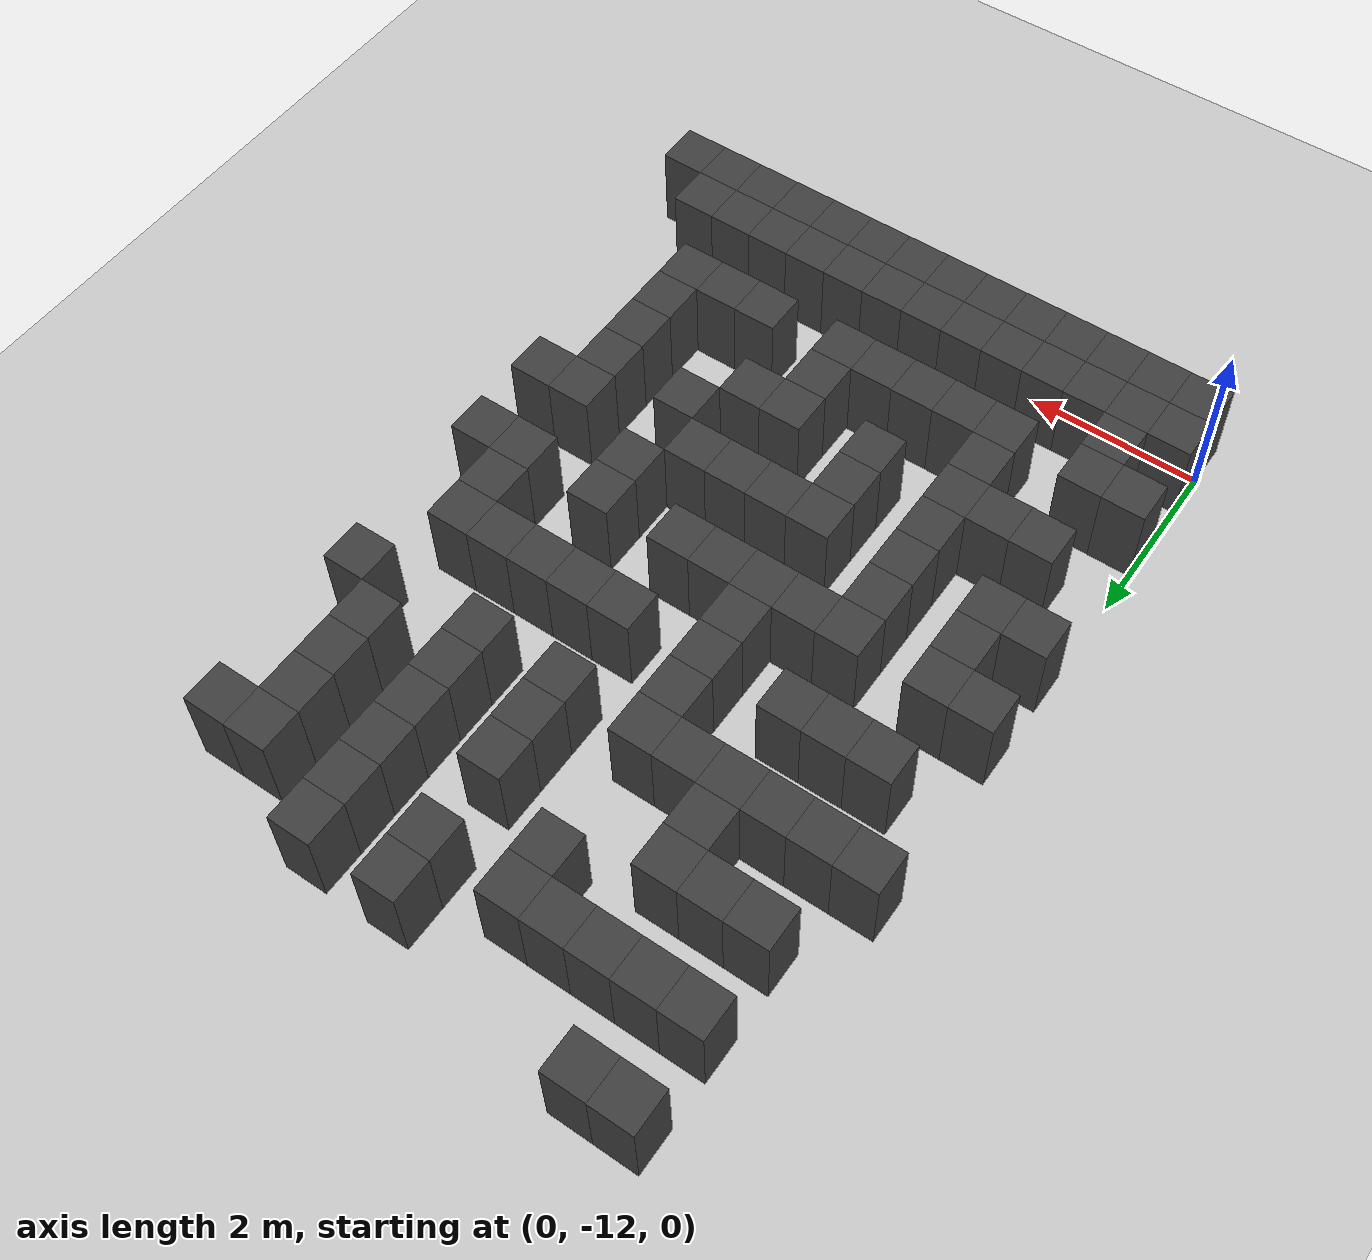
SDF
<sdf version="1.7">
 <world name="map_15293">
  <model name="ground_plane">
   <static>true</static>
   <link name="link">
    <collision name="collision">
     <geometry><plane><normal>0 0 1</normal><size>200 200</size></plane></geometry>
    </collision>
    <visual name="visual">
     <geometry><plane><normal>0 0 1</normal><size>200 200</size></plane></geometry>
     <material><ambient>0.8 0.8 0.8 1</ambient><diffuse>0.8 0.8 0.8 1</diffuse></material>
    </visual>
   </link>
  </model>
  <model name="maze_environment">
   <static>true</static>
   <link name="wall_719">
    <pose>0.750 -2.750 0.500 0 0 0</pose>
    <collision name="col"><geometry><box><size>0.5 0.5 1.0</size></box></geometry></collision>
    <visual name="vis">
     <geometry><box><size>0.5 0.5 1.0</size></box></geometry>
     <material><ambient>0.15 0.15 0.15 1</ambient><diffuse>0.25 0.25 0.25 1</diffuse></material>
    </visual>
   </link>
   <link name="wall_720">
    <pose>1.250 -2.750 0.500 0 0 0</pose>
    <collision name="col"><geometry><box><size>0.5 0.5 1.0</size></box></geometry></collision>
    <visual name="vis">
     <geometry><box><size>0.5 0.5 1.0</size></box></geometry>
     <material><ambient>0.15 0.15 0.15 1</ambient><diffuse>0.25 0.25 0.25 1</diffuse></material>
    </visual>
   </link>
   <link name="wall_744">
    <pose>3.750 -3.250 0.500 0 0 0</pose>
    <collision name="col"><geometry><box><size>0.5 0.5 1.0</size></box></geometry></collision>
    <visual name="vis">
     <geometry><box><size>0.5 0.5 1.0</size></box></geometry>
     <material><ambient>0.15 0.15 0.15 1</ambient><diffuse>0.25 0.25 0.25 1</diffuse></material>
    </visual>
   </link>
   <link name="wall_745">
    <pose>4.750 -3.250 0.500 0 0 0</pose>
    <collision name="col"><geometry><box><size>0.5 0.5 1.0</size></box></geometry></collision>
    <visual name="vis">
     <geometry><box><size>0.5 0.5 1.0</size></box></geometry>
     <material><ambient>0.15 0.15 0.15 1</ambient><diffuse>0.25 0.25 0.25 1</diffuse></material>
    </visual>
   </link>
   <link name="wall_767">
    <pose>0.750 -3.750 0.500 0 0 0</pose>
    <collision name="col"><geometry><box><size>0.5 0.5 1.0</size></box></geometry></collision>
    <visual name="vis">
     <geometry><box><size>0.5 0.5 1.0</size></box></geometry>
     <material><ambient>0.15 0.15 0.15 1</ambient><diffuse>0.25 0.25 0.25 1</diffuse></material>
    </visual>
   </link>
   <link name="wall_768">
    <pose>1.250 -3.750 0.500 0 0 0</pose>
    <collision name="col"><geometry><box><size>0.5 0.5 1.0</size></box></geometry></collision>
    <visual name="vis">
     <geometry><box><size>0.5 0.5 1.0</size></box></geometry>
     <material><ambient>0.15 0.15 0.15 1</ambient><diffuse>0.25 0.25 0.25 1</diffuse></material>
    </visual>
   </link>
   <link name="wall_769">
    <pose>1.750 -3.750 0.500 0 0 0</pose>
    <collision name="col"><geometry><box><size>0.5 0.5 1.0</size></box></geometry></collision>
    <visual name="vis">
     <geometry><box><size>0.5 0.5 1.0</size></box></geometry>
     <material><ambient>0.15 0.15 0.15 1</ambient><diffuse>0.25 0.25 0.25 1</diffuse></material>
    </visual>
   </link>
   <link name="wall_770">
    <pose>2.250 -3.750 0.500 0 0 0</pose>
    <collision name="col"><geometry><box><size>0.5 0.5 1.0</size></box></geometry></collision>
    <visual name="vis">
     <geometry><box><size>0.5 0.5 1.0</size></box></geometry>
     <material><ambient>0.15 0.15 0.15 1</ambient><diffuse>0.25 0.25 0.25 1</diffuse></material>
    </visual>
   </link>
   <link name="wall_771">
    <pose>2.750 -3.750 0.500 0 0 0</pose>
    <collision name="col"><geometry><box><size>0.5 0.5 1.0</size></box></geometry></collision>
    <visual name="vis">
     <geometry><box><size>0.5 0.5 1.0</size></box></geometry>
     <material><ambient>0.15 0.15 0.15 1</ambient><diffuse>0.25 0.25 0.25 1</diffuse></material>
    </visual>
   </link>
   <link name="wall_772">
    <pose>3.750 -3.750 0.500 0 0 0</pose>
    <collision name="col"><geometry><box><size>0.5 0.5 1.0</size></box></geometry></collision>
    <visual name="vis">
     <geometry><box><size>0.5 0.5 1.0</size></box></geometry>
     <material><ambient>0.15 0.15 0.15 1</ambient><diffuse>0.25 0.25 0.25 1</diffuse></material>
    </visual>
   </link>
   <link name="wall_773">
    <pose>4.750 -3.750 0.500 0 0 0</pose>
    <collision name="col"><geometry><box><size>0.5 0.5 1.0</size></box></geometry></collision>
    <visual name="vis">
     <geometry><box><size>0.5 0.5 1.0</size></box></geometry>
     <material><ambient>0.15 0.15 0.15 1</ambient><diffuse>0.25 0.25 0.25 1</diffuse></material>
    </visual>
   </link>
   <link name="wall_774">
    <pose>5.750 -3.750 0.500 0 0 0</pose>
    <collision name="col"><geometry><box><size>0.5 0.5 1.0</size></box></geometry></collision>
    <visual name="vis">
     <geometry><box><size>0.5 0.5 1.0</size></box></geometry>
     <material><ambient>0.15 0.15 0.15 1</ambient><diffuse>0.25 0.25 0.25 1</diffuse></material>
    </visual>
   </link>
   <link name="wall_775">
    <pose>6.250 -3.750 0.500 0 0 0</pose>
    <collision name="col"><geometry><box><size>0.5 0.5 1.0</size></box></geometry></collision>
    <visual name="vis">
     <geometry><box><size>0.5 0.5 1.0</size></box></geometry>
     <material><ambient>0.15 0.15 0.15 1</ambient><diffuse>0.25 0.25 0.25 1</diffuse></material>
    </visual>
   </link>
   <link name="wall_785">
    <pose>2.750 -4.250 0.500 0 0 0</pose>
    <collision name="col"><geometry><box><size>0.5 0.5 1.0</size></box></geometry></collision>
    <visual name="vis">
     <geometry><box><size>0.5 0.5 1.0</size></box></geometry>
     <material><ambient>0.15 0.15 0.15 1</ambient><diffuse>0.25 0.25 0.25 1</diffuse></material>
    </visual>
   </link>
   <link name="wall_786">
    <pose>4.750 -4.250 0.500 0 0 0</pose>
    <collision name="col"><geometry><box><size>0.5 0.5 1.0</size></box></geometry></collision>
    <visual name="vis">
     <geometry><box><size>0.5 0.5 1.0</size></box></geometry>
     <material><ambient>0.15 0.15 0.15 1</ambient><diffuse>0.25 0.25 0.25 1</diffuse></material>
    </visual>
   </link>
   <link name="wall_787">
    <pose>5.750 -4.250 0.500 0 0 0</pose>
    <collision name="col"><geometry><box><size>0.5 0.5 1.0</size></box></geometry></collision>
    <visual name="vis">
     <geometry><box><size>0.5 0.5 1.0</size></box></geometry>
     <material><ambient>0.15 0.15 0.15 1</ambient><diffuse>0.25 0.25 0.25 1</diffuse></material>
    </visual>
   </link>
   <link name="wall_806">
    <pose>0.750 -4.750 0.500 0 0 0</pose>
    <collision name="col"><geometry><box><size>0.5 0.5 1.0</size></box></geometry></collision>
    <visual name="vis">
     <geometry><box><size>0.5 0.5 1.0</size></box></geometry>
     <material><ambient>0.15 0.15 0.15 1</ambient><diffuse>0.25 0.25 0.25 1</diffuse></material>
    </visual>
   </link>
   <link name="wall_807">
    <pose>1.250 -4.750 0.500 0 0 0</pose>
    <collision name="col"><geometry><box><size>0.5 0.5 1.0</size></box></geometry></collision>
    <visual name="vis">
     <geometry><box><size>0.5 0.5 1.0</size></box></geometry>
     <material><ambient>0.15 0.15 0.15 1</ambient><diffuse>0.25 0.25 0.25 1</diffuse></material>
    </visual>
   </link>
   <link name="wall_808">
    <pose>1.750 -4.750 0.500 0 0 0</pose>
    <collision name="col"><geometry><box><size>0.5 0.5 1.0</size></box></geometry></collision>
    <visual name="vis">
     <geometry><box><size>0.5 0.5 1.0</size></box></geometry>
     <material><ambient>0.15 0.15 0.15 1</ambient><diffuse>0.25 0.25 0.25 1</diffuse></material>
    </visual>
   </link>
   <link name="wall_809">
    <pose>3.750 -4.750 0.500 0 0 0</pose>
    <collision name="col"><geometry><box><size>0.5 0.5 1.0</size></box></geometry></collision>
    <visual name="vis">
     <geometry><box><size>0.5 0.5 1.0</size></box></geometry>
     <material><ambient>0.15 0.15 0.15 1</ambient><diffuse>0.25 0.25 0.25 1</diffuse></material>
    </visual>
   </link>
   <link name="wall_810">
    <pose>4.750 -4.750 0.500 0 0 0</pose>
    <collision name="col"><geometry><box><size>0.5 0.5 1.0</size></box></geometry></collision>
    <visual name="vis">
     <geometry><box><size>0.5 0.5 1.0</size></box></geometry>
     <material><ambient>0.15 0.15 0.15 1</ambient><diffuse>0.25 0.25 0.25 1</diffuse></material>
    </visual>
   </link>
   <link name="wall_811">
    <pose>5.750 -4.750 0.500 0 0 0</pose>
    <collision name="col"><geometry><box><size>0.5 0.5 1.0</size></box></geometry></collision>
    <visual name="vis">
     <geometry><box><size>0.5 0.5 1.0</size></box></geometry>
     <material><ambient>0.15 0.15 0.15 1</ambient><diffuse>0.25 0.25 0.25 1</diffuse></material>
    </visual>
   </link>
   <link name="wall_825">
    <pose>1.750 -5.250 0.500 0 0 0</pose>
    <collision name="col"><geometry><box><size>0.5 0.5 1.0</size></box></geometry></collision>
    <visual name="vis">
     <geometry><box><size>0.5 0.5 1.0</size></box></geometry>
     <material><ambient>0.15 0.15 0.15 1</ambient><diffuse>0.25 0.25 0.25 1</diffuse></material>
    </visual>
   </link>
   <link name="wall_826">
    <pose>3.750 -5.250 0.500 0 0 0</pose>
    <collision name="col"><geometry><box><size>0.5 0.5 1.0</size></box></geometry></collision>
    <visual name="vis">
     <geometry><box><size>0.5 0.5 1.0</size></box></geometry>
     <material><ambient>0.15 0.15 0.15 1</ambient><diffuse>0.25 0.25 0.25 1</diffuse></material>
    </visual>
   </link>
   <link name="wall_827">
    <pose>4.750 -5.250 0.500 0 0 0</pose>
    <collision name="col"><geometry><box><size>0.5 0.5 1.0</size></box></geometry></collision>
    <visual name="vis">
     <geometry><box><size>0.5 0.5 1.0</size></box></geometry>
     <material><ambient>0.15 0.15 0.15 1</ambient><diffuse>0.25 0.25 0.25 1</diffuse></material>
    </visual>
   </link>
   <link name="wall_828">
    <pose>5.750 -5.250 0.500 0 0 0</pose>
    <collision name="col"><geometry><box><size>0.5 0.5 1.0</size></box></geometry></collision>
    <visual name="vis">
     <geometry><box><size>0.5 0.5 1.0</size></box></geometry>
     <material><ambient>0.15 0.15 0.15 1</ambient><diffuse>0.25 0.25 0.25 1</diffuse></material>
    </visual>
   </link>
   <link name="wall_853">
    <pose>0.250 -5.750 0.500 0 0 0</pose>
    <collision name="col"><geometry><box><size>0.5 0.5 1.0</size></box></geometry></collision>
    <visual name="vis">
     <geometry><box><size>0.5 0.5 1.0</size></box></geometry>
     <material><ambient>0.15 0.15 0.15 1</ambient><diffuse>0.25 0.25 0.25 1</diffuse></material>
    </visual>
   </link>
   <link name="wall_854">
    <pose>0.750 -5.750 0.500 0 0 0</pose>
    <collision name="col"><geometry><box><size>0.5 0.5 1.0</size></box></geometry></collision>
    <visual name="vis">
     <geometry><box><size>0.5 0.5 1.0</size></box></geometry>
     <material><ambient>0.15 0.15 0.15 1</ambient><diffuse>0.25 0.25 0.25 1</diffuse></material>
    </visual>
   </link>
   <link name="wall_855">
    <pose>1.250 -5.750 0.500 0 0 0</pose>
    <collision name="col"><geometry><box><size>0.5 0.5 1.0</size></box></geometry></collision>
    <visual name="vis">
     <geometry><box><size>0.5 0.5 1.0</size></box></geometry>
     <material><ambient>0.15 0.15 0.15 1</ambient><diffuse>0.25 0.25 0.25 1</diffuse></material>
    </visual>
   </link>
   <link name="wall_856">
    <pose>1.750 -5.750 0.500 0 0 0</pose>
    <collision name="col"><geometry><box><size>0.5 0.5 1.0</size></box></geometry></collision>
    <visual name="vis">
     <geometry><box><size>0.5 0.5 1.0</size></box></geometry>
     <material><ambient>0.15 0.15 0.15 1</ambient><diffuse>0.25 0.25 0.25 1</diffuse></material>
    </visual>
   </link>
   <link name="wall_857">
    <pose>2.250 -5.750 0.500 0 0 0</pose>
    <collision name="col"><geometry><box><size>0.5 0.5 1.0</size></box></geometry></collision>
    <visual name="vis">
     <geometry><box><size>0.5 0.5 1.0</size></box></geometry>
     <material><ambient>0.15 0.15 0.15 1</ambient><diffuse>0.25 0.25 0.25 1</diffuse></material>
    </visual>
   </link>
   <link name="wall_858">
    <pose>2.750 -5.750 0.500 0 0 0</pose>
    <collision name="col"><geometry><box><size>0.5 0.5 1.0</size></box></geometry></collision>
    <visual name="vis">
     <geometry><box><size>0.5 0.5 1.0</size></box></geometry>
     <material><ambient>0.15 0.15 0.15 1</ambient><diffuse>0.25 0.25 0.25 1</diffuse></material>
    </visual>
   </link>
   <link name="wall_859">
    <pose>3.750 -5.750 0.500 0 0 0</pose>
    <collision name="col"><geometry><box><size>0.5 0.5 1.0</size></box></geometry></collision>
    <visual name="vis">
     <geometry><box><size>0.5 0.5 1.0</size></box></geometry>
     <material><ambient>0.15 0.15 0.15 1</ambient><diffuse>0.25 0.25 0.25 1</diffuse></material>
    </visual>
   </link>
   <link name="wall_860">
    <pose>4.750 -5.750 0.500 0 0 0</pose>
    <collision name="col"><geometry><box><size>0.5 0.5 1.0</size></box></geometry></collision>
    <visual name="vis">
     <geometry><box><size>0.5 0.5 1.0</size></box></geometry>
     <material><ambient>0.15 0.15 0.15 1</ambient><diffuse>0.25 0.25 0.25 1</diffuse></material>
    </visual>
   </link>
   <link name="wall_861">
    <pose>6.250 -5.750 0.500 0 0 0</pose>
    <collision name="col"><geometry><box><size>0.5 0.5 1.0</size></box></geometry></collision>
    <visual name="vis">
     <geometry><box><size>0.5 0.5 1.0</size></box></geometry>
     <material><ambient>0.15 0.15 0.15 1</ambient><diffuse>0.25 0.25 0.25 1</diffuse></material>
    </visual>
   </link>
   <link name="wall_873">
    <pose>2.750 -6.250 0.500 0 0 0</pose>
    <collision name="col"><geometry><box><size>0.5 0.5 1.0</size></box></geometry></collision>
    <visual name="vis">
     <geometry><box><size>0.5 0.5 1.0</size></box></geometry>
     <material><ambient>0.15 0.15 0.15 1</ambient><diffuse>0.25 0.25 0.25 1</diffuse></material>
    </visual>
   </link>
   <link name="wall_897">
    <pose>0.750 -6.750 0.500 0 0 0</pose>
    <collision name="col"><geometry><box><size>0.5 0.5 1.0</size></box></geometry></collision>
    <visual name="vis">
     <geometry><box><size>0.5 0.5 1.0</size></box></geometry>
     <material><ambient>0.15 0.15 0.15 1</ambient><diffuse>0.25 0.25 0.25 1</diffuse></material>
    </visual>
   </link>
   <link name="wall_898">
    <pose>1.250 -6.750 0.500 0 0 0</pose>
    <collision name="col"><geometry><box><size>0.5 0.5 1.0</size></box></geometry></collision>
    <visual name="vis">
     <geometry><box><size>0.5 0.5 1.0</size></box></geometry>
     <material><ambient>0.15 0.15 0.15 1</ambient><diffuse>0.25 0.25 0.25 1</diffuse></material>
    </visual>
   </link>
   <link name="wall_899">
    <pose>1.750 -6.750 0.500 0 0 0</pose>
    <collision name="col"><geometry><box><size>0.5 0.5 1.0</size></box></geometry></collision>
    <visual name="vis">
     <geometry><box><size>0.5 0.5 1.0</size></box></geometry>
     <material><ambient>0.15 0.15 0.15 1</ambient><diffuse>0.25 0.25 0.25 1</diffuse></material>
    </visual>
   </link>
   <link name="wall_900">
    <pose>2.750 -6.750 0.500 0 0 0</pose>
    <collision name="col"><geometry><box><size>0.5 0.5 1.0</size></box></geometry></collision>
    <visual name="vis">
     <geometry><box><size>0.5 0.5 1.0</size></box></geometry>
     <material><ambient>0.15 0.15 0.15 1</ambient><diffuse>0.25 0.25 0.25 1</diffuse></material>
    </visual>
   </link>
   <link name="wall_901">
    <pose>3.750 -6.750 0.500 0 0 0</pose>
    <collision name="col"><geometry><box><size>0.5 0.5 1.0</size></box></geometry></collision>
    <visual name="vis">
     <geometry><box><size>0.5 0.5 1.0</size></box></geometry>
     <material><ambient>0.15 0.15 0.15 1</ambient><diffuse>0.25 0.25 0.25 1</diffuse></material>
    </visual>
   </link>
   <link name="wall_902">
    <pose>4.250 -6.750 0.500 0 0 0</pose>
    <collision name="col"><geometry><box><size>0.5 0.5 1.0</size></box></geometry></collision>
    <visual name="vis">
     <geometry><box><size>0.5 0.5 1.0</size></box></geometry>
     <material><ambient>0.15 0.15 0.15 1</ambient><diffuse>0.25 0.25 0.25 1</diffuse></material>
    </visual>
   </link>
   <link name="wall_903">
    <pose>4.750 -6.750 0.500 0 0 0</pose>
    <collision name="col"><geometry><box><size>0.5 0.5 1.0</size></box></geometry></collision>
    <visual name="vis">
     <geometry><box><size>0.5 0.5 1.0</size></box></geometry>
     <material><ambient>0.15 0.15 0.15 1</ambient><diffuse>0.25 0.25 0.25 1</diffuse></material>
    </visual>
   </link>
   <link name="wall_904">
    <pose>5.250 -6.750 0.500 0 0 0</pose>
    <collision name="col"><geometry><box><size>0.5 0.5 1.0</size></box></geometry></collision>
    <visual name="vis">
     <geometry><box><size>0.5 0.5 1.0</size></box></geometry>
     <material><ambient>0.15 0.15 0.15 1</ambient><diffuse>0.25 0.25 0.25 1</diffuse></material>
    </visual>
   </link>
   <link name="wall_905">
    <pose>5.750 -6.750 0.500 0 0 0</pose>
    <collision name="col"><geometry><box><size>0.5 0.5 1.0</size></box></geometry></collision>
    <visual name="vis">
     <geometry><box><size>0.5 0.5 1.0</size></box></geometry>
     <material><ambient>0.15 0.15 0.15 1</ambient><diffuse>0.25 0.25 0.25 1</diffuse></material>
    </visual>
   </link>
   <link name="wall_922">
    <pose>2.750 -7.250 0.500 0 0 0</pose>
    <collision name="col"><geometry><box><size>0.5 0.5 1.0</size></box></geometry></collision>
    <visual name="vis">
     <geometry><box><size>0.5 0.5 1.0</size></box></geometry>
     <material><ambient>0.15 0.15 0.15 1</ambient><diffuse>0.25 0.25 0.25 1</diffuse></material>
    </visual>
   </link>
   <link name="wall_923">
    <pose>5.750 -7.250 0.500 0 0 0</pose>
    <collision name="col"><geometry><box><size>0.5 0.5 1.0</size></box></geometry></collision>
    <visual name="vis">
     <geometry><box><size>0.5 0.5 1.0</size></box></geometry>
     <material><ambient>0.15 0.15 0.15 1</ambient><diffuse>0.25 0.25 0.25 1</diffuse></material>
    </visual>
   </link>
   <link name="wall_943">
    <pose>0.250 -7.750 0.500 0 0 0</pose>
    <collision name="col"><geometry><box><size>0.5 0.5 1.0</size></box></geometry></collision>
    <visual name="vis">
     <geometry><box><size>0.5 0.5 1.0</size></box></geometry>
     <material><ambient>0.15 0.15 0.15 1</ambient><diffuse>0.25 0.25 0.25 1</diffuse></material>
    </visual>
   </link>
   <link name="wall_944">
    <pose>0.750 -7.750 0.500 0 0 0</pose>
    <collision name="col"><geometry><box><size>0.5 0.5 1.0</size></box></geometry></collision>
    <visual name="vis">
     <geometry><box><size>0.5 0.5 1.0</size></box></geometry>
     <material><ambient>0.15 0.15 0.15 1</ambient><diffuse>0.25 0.25 0.25 1</diffuse></material>
    </visual>
   </link>
   <link name="wall_945">
    <pose>1.750 -7.750 0.500 0 0 0</pose>
    <collision name="col"><geometry><box><size>0.5 0.5 1.0</size></box></geometry></collision>
    <visual name="vis">
     <geometry><box><size>0.5 0.5 1.0</size></box></geometry>
     <material><ambient>0.15 0.15 0.15 1</ambient><diffuse>0.25 0.25 0.25 1</diffuse></material>
    </visual>
   </link>
   <link name="wall_946">
    <pose>2.250 -7.750 0.500 0 0 0</pose>
    <collision name="col"><geometry><box><size>0.5 0.5 1.0</size></box></geometry></collision>
    <visual name="vis">
     <geometry><box><size>0.5 0.5 1.0</size></box></geometry>
     <material><ambient>0.15 0.15 0.15 1</ambient><diffuse>0.25 0.25 0.25 1</diffuse></material>
    </visual>
   </link>
   <link name="wall_947">
    <pose>2.750 -7.750 0.500 0 0 0</pose>
    <collision name="col"><geometry><box><size>0.5 0.5 1.0</size></box></geometry></collision>
    <visual name="vis">
     <geometry><box><size>0.5 0.5 1.0</size></box></geometry>
     <material><ambient>0.15 0.15 0.15 1</ambient><diffuse>0.25 0.25 0.25 1</diffuse></material>
    </visual>
   </link>
   <link name="wall_948">
    <pose>3.250 -7.750 0.500 0 0 0</pose>
    <collision name="col"><geometry><box><size>0.5 0.5 1.0</size></box></geometry></collision>
    <visual name="vis">
     <geometry><box><size>0.5 0.5 1.0</size></box></geometry>
     <material><ambient>0.15 0.15 0.15 1</ambient><diffuse>0.25 0.25 0.25 1</diffuse></material>
    </visual>
   </link>
   <link name="wall_949">
    <pose>3.750 -7.750 0.500 0 0 0</pose>
    <collision name="col"><geometry><box><size>0.5 0.5 1.0</size></box></geometry></collision>
    <visual name="vis">
     <geometry><box><size>0.5 0.5 1.0</size></box></geometry>
     <material><ambient>0.15 0.15 0.15 1</ambient><diffuse>0.25 0.25 0.25 1</diffuse></material>
    </visual>
   </link>
   <link name="wall_950">
    <pose>4.750 -7.750 0.500 0 0 0</pose>
    <collision name="col"><geometry><box><size>0.5 0.5 1.0</size></box></geometry></collision>
    <visual name="vis">
     <geometry><box><size>0.5 0.5 1.0</size></box></geometry>
     <material><ambient>0.15 0.15 0.15 1</ambient><diffuse>0.25 0.25 0.25 1</diffuse></material>
    </visual>
   </link>
   <link name="wall_951">
    <pose>5.750 -7.750 0.500 0 0 0</pose>
    <collision name="col"><geometry><box><size>0.5 0.5 1.0</size></box></geometry></collision>
    <visual name="vis">
     <geometry><box><size>0.5 0.5 1.0</size></box></geometry>
     <material><ambient>0.15 0.15 0.15 1</ambient><diffuse>0.25 0.25 0.25 1</diffuse></material>
    </visual>
   </link>
   <link name="wall_952">
    <pose>6.250 -7.750 0.500 0 0 0</pose>
    <collision name="col"><geometry><box><size>0.5 0.5 1.0</size></box></geometry></collision>
    <visual name="vis">
     <geometry><box><size>0.5 0.5 1.0</size></box></geometry>
     <material><ambient>0.15 0.15 0.15 1</ambient><diffuse>0.25 0.25 0.25 1</diffuse></material>
    </visual>
   </link>
   <link name="wall_968">
    <pose>0.750 -8.250 0.500 0 0 0</pose>
    <collision name="col"><geometry><box><size>0.5 0.5 1.0</size></box></geometry></collision>
    <visual name="vis">
     <geometry><box><size>0.5 0.5 1.0</size></box></geometry>
     <material><ambient>0.15 0.15 0.15 1</ambient><diffuse>0.25 0.25 0.25 1</diffuse></material>
    </visual>
   </link>
   <link name="wall_969">
    <pose>1.750 -8.250 0.500 0 0 0</pose>
    <collision name="col"><geometry><box><size>0.5 0.5 1.0</size></box></geometry></collision>
    <visual name="vis">
     <geometry><box><size>0.5 0.5 1.0</size></box></geometry>
     <material><ambient>0.15 0.15 0.15 1</ambient><diffuse>0.25 0.25 0.25 1</diffuse></material>
    </visual>
   </link>
   <link name="wall_970">
    <pose>4.750 -8.250 0.500 0 0 0</pose>
    <collision name="col"><geometry><box><size>0.5 0.5 1.0</size></box></geometry></collision>
    <visual name="vis">
     <geometry><box><size>0.5 0.5 1.0</size></box></geometry>
     <material><ambient>0.15 0.15 0.15 1</ambient><diffuse>0.25 0.25 0.25 1</diffuse></material>
    </visual>
   </link>
   <link name="wall_990">
    <pose>0.250 -8.750 0.500 0 0 0</pose>
    <collision name="col"><geometry><box><size>0.5 0.5 1.0</size></box></geometry></collision>
    <visual name="vis">
     <geometry><box><size>0.5 0.5 1.0</size></box></geometry>
     <material><ambient>0.15 0.15 0.15 1</ambient><diffuse>0.25 0.25 0.25 1</diffuse></material>
    </visual>
   </link>
   <link name="wall_991">
    <pose>0.750 -8.750 0.500 0 0 0</pose>
    <collision name="col"><geometry><box><size>0.5 0.5 1.0</size></box></geometry></collision>
    <visual name="vis">
     <geometry><box><size>0.5 0.5 1.0</size></box></geometry>
     <material><ambient>0.15 0.15 0.15 1</ambient><diffuse>0.25 0.25 0.25 1</diffuse></material>
    </visual>
   </link>
   <link name="wall_992">
    <pose>1.750 -8.750 0.500 0 0 0</pose>
    <collision name="col"><geometry><box><size>0.5 0.5 1.0</size></box></geometry></collision>
    <visual name="vis">
     <geometry><box><size>0.5 0.5 1.0</size></box></geometry>
     <material><ambient>0.15 0.15 0.15 1</ambient><diffuse>0.25 0.25 0.25 1</diffuse></material>
    </visual>
   </link>
   <link name="wall_993">
    <pose>2.750 -8.750 0.500 0 0 0</pose>
    <collision name="col"><geometry><box><size>0.5 0.5 1.0</size></box></geometry></collision>
    <visual name="vis">
     <geometry><box><size>0.5 0.5 1.0</size></box></geometry>
     <material><ambient>0.15 0.15 0.15 1</ambient><diffuse>0.25 0.25 0.25 1</diffuse></material>
    </visual>
   </link>
   <link name="wall_994">
    <pose>3.250 -8.750 0.500 0 0 0</pose>
    <collision name="col"><geometry><box><size>0.5 0.5 1.0</size></box></geometry></collision>
    <visual name="vis">
     <geometry><box><size>0.5 0.5 1.0</size></box></geometry>
     <material><ambient>0.15 0.15 0.15 1</ambient><diffuse>0.25 0.25 0.25 1</diffuse></material>
    </visual>
   </link>
   <link name="wall_995">
    <pose>3.750 -8.750 0.500 0 0 0</pose>
    <collision name="col"><geometry><box><size>0.5 0.5 1.0</size></box></geometry></collision>
    <visual name="vis">
     <geometry><box><size>0.5 0.5 1.0</size></box></geometry>
     <material><ambient>0.15 0.15 0.15 1</ambient><diffuse>0.25 0.25 0.25 1</diffuse></material>
    </visual>
   </link>
   <link name="wall_996">
    <pose>4.250 -8.750 0.500 0 0 0</pose>
    <collision name="col"><geometry><box><size>0.5 0.5 1.0</size></box></geometry></collision>
    <visual name="vis">
     <geometry><box><size>0.5 0.5 1.0</size></box></geometry>
     <material><ambient>0.15 0.15 0.15 1</ambient><diffuse>0.25 0.25 0.25 1</diffuse></material>
    </visual>
   </link>
   <link name="wall_997">
    <pose>5.750 -8.750 0.500 0 0 0</pose>
    <collision name="col"><geometry><box><size>0.5 0.5 1.0</size></box></geometry></collision>
    <visual name="vis">
     <geometry><box><size>0.5 0.5 1.0</size></box></geometry>
     <material><ambient>0.15 0.15 0.15 1</ambient><diffuse>0.25 0.25 0.25 1</diffuse></material>
    </visual>
   </link>
   <link name="wall_998">
    <pose>6.250 -8.750 0.500 0 0 0</pose>
    <collision name="col"><geometry><box><size>0.5 0.5 1.0</size></box></geometry></collision>
    <visual name="vis">
     <geometry><box><size>0.5 0.5 1.0</size></box></geometry>
     <material><ambient>0.15 0.15 0.15 1</ambient><diffuse>0.25 0.25 0.25 1</diffuse></material>
    </visual>
   </link>
   <link name="wall_1016">
    <pose>1.750 -9.250 0.500 0 0 0</pose>
    <collision name="col"><geometry><box><size>0.5 0.5 1.0</size></box></geometry></collision>
    <visual name="vis">
     <geometry><box><size>0.5 0.5 1.0</size></box></geometry>
     <material><ambient>0.15 0.15 0.15 1</ambient><diffuse>0.25 0.25 0.25 1</diffuse></material>
    </visual>
   </link>
   <link name="wall_1017">
    <pose>2.750 -9.250 0.500 0 0 0</pose>
    <collision name="col"><geometry><box><size>0.5 0.5 1.0</size></box></geometry></collision>
    <visual name="vis">
     <geometry><box><size>0.5 0.5 1.0</size></box></geometry>
     <material><ambient>0.15 0.15 0.15 1</ambient><diffuse>0.25 0.25 0.25 1</diffuse></material>
    </visual>
   </link>
   <link name="wall_1018">
    <pose>4.750 -9.250 0.500 0 0 0</pose>
    <collision name="col"><geometry><box><size>0.5 0.5 1.0</size></box></geometry></collision>
    <visual name="vis">
     <geometry><box><size>0.5 0.5 1.0</size></box></geometry>
     <material><ambient>0.15 0.15 0.15 1</ambient><diffuse>0.25 0.25 0.25 1</diffuse></material>
    </visual>
   </link>
   <link name="wall_1019">
    <pose>5.750 -9.250 0.500 0 0 0</pose>
    <collision name="col"><geometry><box><size>0.5 0.5 1.0</size></box></geometry></collision>
    <visual name="vis">
     <geometry><box><size>0.5 0.5 1.0</size></box></geometry>
     <material><ambient>0.15 0.15 0.15 1</ambient><diffuse>0.25 0.25 0.25 1</diffuse></material>
    </visual>
   </link>
   <link name="wall_1040">
    <pose>0.750 -9.750 0.500 0 0 0</pose>
    <collision name="col"><geometry><box><size>0.5 0.5 1.0</size></box></geometry></collision>
    <visual name="vis">
     <geometry><box><size>0.5 0.5 1.0</size></box></geometry>
     <material><ambient>0.15 0.15 0.15 1</ambient><diffuse>0.25 0.25 0.25 1</diffuse></material>
    </visual>
   </link>
   <link name="wall_1041">
    <pose>1.250 -9.750 0.500 0 0 0</pose>
    <collision name="col"><geometry><box><size>0.5 0.5 1.0</size></box></geometry></collision>
    <visual name="vis">
     <geometry><box><size>0.5 0.5 1.0</size></box></geometry>
     <material><ambient>0.15 0.15 0.15 1</ambient><diffuse>0.25 0.25 0.25 1</diffuse></material>
    </visual>
   </link>
   <link name="wall_1042">
    <pose>1.750 -9.750 0.500 0 0 0</pose>
    <collision name="col"><geometry><box><size>0.5 0.5 1.0</size></box></geometry></collision>
    <visual name="vis">
     <geometry><box><size>0.5 0.5 1.0</size></box></geometry>
     <material><ambient>0.15 0.15 0.15 1</ambient><diffuse>0.25 0.25 0.25 1</diffuse></material>
    </visual>
   </link>
   <link name="wall_1043">
    <pose>2.750 -9.750 0.500 0 0 0</pose>
    <collision name="col"><geometry><box><size>0.5 0.5 1.0</size></box></geometry></collision>
    <visual name="vis">
     <geometry><box><size>0.5 0.5 1.0</size></box></geometry>
     <material><ambient>0.15 0.15 0.15 1</ambient><diffuse>0.25 0.25 0.25 1</diffuse></material>
    </visual>
   </link>
   <link name="wall_1044">
    <pose>3.750 -9.750 0.500 0 0 0</pose>
    <collision name="col"><geometry><box><size>0.5 0.5 1.0</size></box></geometry></collision>
    <visual name="vis">
     <geometry><box><size>0.5 0.5 1.0</size></box></geometry>
     <material><ambient>0.15 0.15 0.15 1</ambient><diffuse>0.25 0.25 0.25 1</diffuse></material>
    </visual>
   </link>
   <link name="wall_1045">
    <pose>4.250 -9.750 0.500 0 0 0</pose>
    <collision name="col"><geometry><box><size>0.5 0.5 1.0</size></box></geometry></collision>
    <visual name="vis">
     <geometry><box><size>0.5 0.5 1.0</size></box></geometry>
     <material><ambient>0.15 0.15 0.15 1</ambient><diffuse>0.25 0.25 0.25 1</diffuse></material>
    </visual>
   </link>
   <link name="wall_1046">
    <pose>5.750 -9.750 0.500 0 0 0</pose>
    <collision name="col"><geometry><box><size>0.5 0.5 1.0</size></box></geometry></collision>
    <visual name="vis">
     <geometry><box><size>0.5 0.5 1.0</size></box></geometry>
     <material><ambient>0.15 0.15 0.15 1</ambient><diffuse>0.25 0.25 0.25 1</diffuse></material>
    </visual>
   </link>
   <link name="wall_1060">
    <pose>1.750 -10.250 0.500 0 0 0</pose>
    <collision name="col"><geometry><box><size>0.5 0.5 1.0</size></box></geometry></collision>
    <visual name="vis">
     <geometry><box><size>0.5 0.5 1.0</size></box></geometry>
     <material><ambient>0.15 0.15 0.15 1</ambient><diffuse>0.25 0.25 0.25 1</diffuse></material>
    </visual>
   </link>
   <link name="wall_1061">
    <pose>3.750 -10.250 0.500 0 0 0</pose>
    <collision name="col"><geometry><box><size>0.5 0.5 1.0</size></box></geometry></collision>
    <visual name="vis">
     <geometry><box><size>0.5 0.5 1.0</size></box></geometry>
     <material><ambient>0.15 0.15 0.15 1</ambient><diffuse>0.25 0.25 0.25 1</diffuse></material>
    </visual>
   </link>
   <link name="wall_1062">
    <pose>5.750 -10.250 0.500 0 0 0</pose>
    <collision name="col"><geometry><box><size>0.5 0.5 1.0</size></box></geometry></collision>
    <visual name="vis">
     <geometry><box><size>0.5 0.5 1.0</size></box></geometry>
     <material><ambient>0.15 0.15 0.15 1</ambient><diffuse>0.25 0.25 0.25 1</diffuse></material>
    </visual>
   </link>
   <link name="wall_1082">
    <pose>0.250 -10.750 0.500 0 0 0</pose>
    <collision name="col"><geometry><box><size>0.5 0.5 1.0</size></box></geometry></collision>
    <visual name="vis">
     <geometry><box><size>0.5 0.5 1.0</size></box></geometry>
     <material><ambient>0.15 0.15 0.15 1</ambient><diffuse>0.25 0.25 0.25 1</diffuse></material>
    </visual>
   </link>
   <link name="wall_1083">
    <pose>0.750 -10.750 0.500 0 0 0</pose>
    <collision name="col"><geometry><box><size>0.5 0.5 1.0</size></box></geometry></collision>
    <visual name="vis">
     <geometry><box><size>0.5 0.5 1.0</size></box></geometry>
     <material><ambient>0.15 0.15 0.15 1</ambient><diffuse>0.25 0.25 0.25 1</diffuse></material>
    </visual>
   </link>
   <link name="wall_1084">
    <pose>1.750 -10.750 0.500 0 0 0</pose>
    <collision name="col"><geometry><box><size>0.5 0.5 1.0</size></box></geometry></collision>
    <visual name="vis">
     <geometry><box><size>0.5 0.5 1.0</size></box></geometry>
     <material><ambient>0.15 0.15 0.15 1</ambient><diffuse>0.25 0.25 0.25 1</diffuse></material>
    </visual>
   </link>
   <link name="wall_1085">
    <pose>2.250 -10.750 0.500 0 0 0</pose>
    <collision name="col"><geometry><box><size>0.5 0.5 1.0</size></box></geometry></collision>
    <visual name="vis">
     <geometry><box><size>0.5 0.5 1.0</size></box></geometry>
     <material><ambient>0.15 0.15 0.15 1</ambient><diffuse>0.25 0.25 0.25 1</diffuse></material>
    </visual>
   </link>
   <link name="wall_1086">
    <pose>2.750 -10.750 0.500 0 0 0</pose>
    <collision name="col"><geometry><box><size>0.5 0.5 1.0</size></box></geometry></collision>
    <visual name="vis">
     <geometry><box><size>0.5 0.5 1.0</size></box></geometry>
     <material><ambient>0.15 0.15 0.15 1</ambient><diffuse>0.25 0.25 0.25 1</diffuse></material>
    </visual>
   </link>
   <link name="wall_1087">
    <pose>3.250 -10.750 0.500 0 0 0</pose>
    <collision name="col"><geometry><box><size>0.5 0.5 1.0</size></box></geometry></collision>
    <visual name="vis">
     <geometry><box><size>0.5 0.5 1.0</size></box></geometry>
     <material><ambient>0.15 0.15 0.15 1</ambient><diffuse>0.25 0.25 0.25 1</diffuse></material>
    </visual>
   </link>
   <link name="wall_1088">
    <pose>3.750 -10.750 0.500 0 0 0</pose>
    <collision name="col"><geometry><box><size>0.5 0.5 1.0</size></box></geometry></collision>
    <visual name="vis">
     <geometry><box><size>0.5 0.5 1.0</size></box></geometry>
     <material><ambient>0.15 0.15 0.15 1</ambient><diffuse>0.25 0.25 0.25 1</diffuse></material>
    </visual>
   </link>
   <link name="wall_1089">
    <pose>4.750 -10.750 0.500 0 0 0</pose>
    <collision name="col"><geometry><box><size>0.5 0.5 1.0</size></box></geometry></collision>
    <visual name="vis">
     <geometry><box><size>0.5 0.5 1.0</size></box></geometry>
     <material><ambient>0.15 0.15 0.15 1</ambient><diffuse>0.25 0.25 0.25 1</diffuse></material>
    </visual>
   </link>
   <link name="wall_1090">
    <pose>5.250 -10.750 0.500 0 0 0</pose>
    <collision name="col"><geometry><box><size>0.5 0.5 1.0</size></box></geometry></collision>
    <visual name="vis">
     <geometry><box><size>0.5 0.5 1.0</size></box></geometry>
     <material><ambient>0.15 0.15 0.15 1</ambient><diffuse>0.25 0.25 0.25 1</diffuse></material>
    </visual>
   </link>
   <link name="wall_1091">
    <pose>5.750 -10.750 0.500 0 0 0</pose>
    <collision name="col"><geometry><box><size>0.5 0.5 1.0</size></box></geometry></collision>
    <visual name="vis">
     <geometry><box><size>0.5 0.5 1.0</size></box></geometry>
     <material><ambient>0.15 0.15 0.15 1</ambient><diffuse>0.25 0.25 0.25 1</diffuse></material>
    </visual>
   </link>
   <link name="wall_1103">
    <pose>0.750 -11.250 0.500 0 0 0</pose>
    <collision name="col"><geometry><box><size>0.5 0.5 1.0</size></box></geometry></collision>
    <visual name="vis">
     <geometry><box><size>0.5 0.5 1.0</size></box></geometry>
     <material><ambient>0.15 0.15 0.15 1</ambient><diffuse>0.25 0.25 0.25 1</diffuse></material>
    </visual>
   </link>
   <link name="wall_1131">
    <pose>0.250 -11.750 0.500 0 0 0</pose>
    <collision name="col"><geometry><box><size>0.5 0.5 1.0</size></box></geometry></collision>
    <visual name="vis">
     <geometry><box><size>0.5 0.5 1.0</size></box></geometry>
     <material><ambient>0.15 0.15 0.15 1</ambient><diffuse>0.25 0.25 0.25 1</diffuse></material>
    </visual>
   </link>
   <link name="wall_1132">
    <pose>0.750 -11.750 0.500 0 0 0</pose>
    <collision name="col"><geometry><box><size>0.5 0.5 1.0</size></box></geometry></collision>
    <visual name="vis">
     <geometry><box><size>0.5 0.5 1.0</size></box></geometry>
     <material><ambient>0.15 0.15 0.15 1</ambient><diffuse>0.25 0.25 0.25 1</diffuse></material>
    </visual>
   </link>
   <link name="wall_1133">
    <pose>1.250 -11.750 0.500 0 0 0</pose>
    <collision name="col"><geometry><box><size>0.5 0.5 1.0</size></box></geometry></collision>
    <visual name="vis">
     <geometry><box><size>0.5 0.5 1.0</size></box></geometry>
     <material><ambient>0.15 0.15 0.15 1</ambient><diffuse>0.25 0.25 0.25 1</diffuse></material>
    </visual>
   </link>
   <link name="wall_1134">
    <pose>1.750 -11.750 0.500 0 0 0</pose>
    <collision name="col"><geometry><box><size>0.5 0.5 1.0</size></box></geometry></collision>
    <visual name="vis">
     <geometry><box><size>0.5 0.5 1.0</size></box></geometry>
     <material><ambient>0.15 0.15 0.15 1</ambient><diffuse>0.25 0.25 0.25 1</diffuse></material>
    </visual>
   </link>
   <link name="wall_1135">
    <pose>2.250 -11.750 0.500 0 0 0</pose>
    <collision name="col"><geometry><box><size>0.5 0.5 1.0</size></box></geometry></collision>
    <visual name="vis">
     <geometry><box><size>0.5 0.5 1.0</size></box></geometry>
     <material><ambient>0.15 0.15 0.15 1</ambient><diffuse>0.25 0.25 0.25 1</diffuse></material>
    </visual>
   </link>
   <link name="wall_1136">
    <pose>2.750 -11.750 0.500 0 0 0</pose>
    <collision name="col"><geometry><box><size>0.5 0.5 1.0</size></box></geometry></collision>
    <visual name="vis">
     <geometry><box><size>0.5 0.5 1.0</size></box></geometry>
     <material><ambient>0.15 0.15 0.15 1</ambient><diffuse>0.25 0.25 0.25 1</diffuse></material>
    </visual>
   </link>
   <link name="wall_1137">
    <pose>3.250 -11.750 0.500 0 0 0</pose>
    <collision name="col"><geometry><box><size>0.5 0.5 1.0</size></box></geometry></collision>
    <visual name="vis">
     <geometry><box><size>0.5 0.5 1.0</size></box></geometry>
     <material><ambient>0.15 0.15 0.15 1</ambient><diffuse>0.25 0.25 0.25 1</diffuse></material>
    </visual>
   </link>
   <link name="wall_1138">
    <pose>3.750 -11.750 0.500 0 0 0</pose>
    <collision name="col"><geometry><box><size>0.5 0.5 1.0</size></box></geometry></collision>
    <visual name="vis">
     <geometry><box><size>0.5 0.5 1.0</size></box></geometry>
     <material><ambient>0.15 0.15 0.15 1</ambient><diffuse>0.25 0.25 0.25 1</diffuse></material>
    </visual>
   </link>
   <link name="wall_1139">
    <pose>4.250 -11.750 0.500 0 0 0</pose>
    <collision name="col"><geometry><box><size>0.5 0.5 1.0</size></box></geometry></collision>
    <visual name="vis">
     <geometry><box><size>0.5 0.5 1.0</size></box></geometry>
     <material><ambient>0.15 0.15 0.15 1</ambient><diffuse>0.25 0.25 0.25 1</diffuse></material>
    </visual>
   </link>
   <link name="wall_1140">
    <pose>4.750 -11.750 0.500 0 0 0</pose>
    <collision name="col"><geometry><box><size>0.5 0.5 1.0</size></box></geometry></collision>
    <visual name="vis">
     <geometry><box><size>0.5 0.5 1.0</size></box></geometry>
     <material><ambient>0.15 0.15 0.15 1</ambient><diffuse>0.25 0.25 0.25 1</diffuse></material>
    </visual>
   </link>
   <link name="wall_1141">
    <pose>5.250 -11.750 0.500 0 0 0</pose>
    <collision name="col"><geometry><box><size>0.5 0.5 1.0</size></box></geometry></collision>
    <visual name="vis">
     <geometry><box><size>0.5 0.5 1.0</size></box></geometry>
     <material><ambient>0.15 0.15 0.15 1</ambient><diffuse>0.25 0.25 0.25 1</diffuse></material>
    </visual>
   </link>
   <link name="wall_1142">
    <pose>5.750 -11.750 0.500 0 0 0</pose>
    <collision name="col"><geometry><box><size>0.5 0.5 1.0</size></box></geometry></collision>
    <visual name="vis">
     <geometry><box><size>0.5 0.5 1.0</size></box></geometry>
     <material><ambient>0.15 0.15 0.15 1</ambient><diffuse>0.25 0.25 0.25 1</diffuse></material>
    </visual>
   </link>
   <link name="wall_1143">
    <pose>6.250 -11.750 0.500 0 0 0</pose>
    <collision name="col"><geometry><box><size>0.5 0.5 1.0</size></box></geometry></collision>
    <visual name="vis">
     <geometry><box><size>0.5 0.5 1.0</size></box></geometry>
     <material><ambient>0.15 0.15 0.15 1</ambient><diffuse>0.25 0.25 0.25 1</diffuse></material>
    </visual>
   </link>
   <link name="wall_1179">
    <pose>0.250 -12.250 0.500 0 0 0</pose>
    <collision name="col"><geometry><box><size>0.5 0.5 1.0</size></box></geometry></collision>
    <visual name="vis">
     <geometry><box><size>0.5 0.5 1.0</size></box></geometry>
     <material><ambient>0.15 0.15 0.15 1</ambient><diffuse>0.25 0.25 0.25 1</diffuse></material>
    </visual>
   </link>
   <link name="wall_1180">
    <pose>0.750 -12.250 0.500 0 0 0</pose>
    <collision name="col"><geometry><box><size>0.5 0.5 1.0</size></box></geometry></collision>
    <visual name="vis">
     <geometry><box><size>0.5 0.5 1.0</size></box></geometry>
     <material><ambient>0.15 0.15 0.15 1</ambient><diffuse>0.25 0.25 0.25 1</diffuse></material>
    </visual>
   </link>
   <link name="wall_1181">
    <pose>1.250 -12.250 0.500 0 0 0</pose>
    <collision name="col"><geometry><box><size>0.5 0.5 1.0</size></box></geometry></collision>
    <visual name="vis">
     <geometry><box><size>0.5 0.5 1.0</size></box></geometry>
     <material><ambient>0.15 0.15 0.15 1</ambient><diffuse>0.25 0.25 0.25 1</diffuse></material>
    </visual>
   </link>
   <link name="wall_1182">
    <pose>1.750 -12.250 0.500 0 0 0</pose>
    <collision name="col"><geometry><box><size>0.5 0.5 1.0</size></box></geometry></collision>
    <visual name="vis">
     <geometry><box><size>0.5 0.5 1.0</size></box></geometry>
     <material><ambient>0.15 0.15 0.15 1</ambient><diffuse>0.25 0.25 0.25 1</diffuse></material>
    </visual>
   </link>
   <link name="wall_1183">
    <pose>2.250 -12.250 0.500 0 0 0</pose>
    <collision name="col"><geometry><box><size>0.5 0.5 1.0</size></box></geometry></collision>
    <visual name="vis">
     <geometry><box><size>0.5 0.5 1.0</size></box></geometry>
     <material><ambient>0.15 0.15 0.15 1</ambient><diffuse>0.25 0.25 0.25 1</diffuse></material>
    </visual>
   </link>
   <link name="wall_1184">
    <pose>2.750 -12.250 0.500 0 0 0</pose>
    <collision name="col"><geometry><box><size>0.5 0.5 1.0</size></box></geometry></collision>
    <visual name="vis">
     <geometry><box><size>0.5 0.5 1.0</size></box></geometry>
     <material><ambient>0.15 0.15 0.15 1</ambient><diffuse>0.25 0.25 0.25 1</diffuse></material>
    </visual>
   </link>
   <link name="wall_1185">
    <pose>3.250 -12.250 0.500 0 0 0</pose>
    <collision name="col"><geometry><box><size>0.5 0.5 1.0</size></box></geometry></collision>
    <visual name="vis">
     <geometry><box><size>0.5 0.5 1.0</size></box></geometry>
     <material><ambient>0.15 0.15 0.15 1</ambient><diffuse>0.25 0.25 0.25 1</diffuse></material>
    </visual>
   </link>
   <link name="wall_1186">
    <pose>3.750 -12.250 0.500 0 0 0</pose>
    <collision name="col"><geometry><box><size>0.5 0.5 1.0</size></box></geometry></collision>
    <visual name="vis">
     <geometry><box><size>0.5 0.5 1.0</size></box></geometry>
     <material><ambient>0.15 0.15 0.15 1</ambient><diffuse>0.25 0.25 0.25 1</diffuse></material>
    </visual>
   </link>
   <link name="wall_1187">
    <pose>4.250 -12.250 0.500 0 0 0</pose>
    <collision name="col"><geometry><box><size>0.5 0.5 1.0</size></box></geometry></collision>
    <visual name="vis">
     <geometry><box><size>0.5 0.5 1.0</size></box></geometry>
     <material><ambient>0.15 0.15 0.15 1</ambient><diffuse>0.25 0.25 0.25 1</diffuse></material>
    </visual>
   </link>
   <link name="wall_1188">
    <pose>4.750 -12.250 0.500 0 0 0</pose>
    <collision name="col"><geometry><box><size>0.5 0.5 1.0</size></box></geometry></collision>
    <visual name="vis">
     <geometry><box><size>0.5 0.5 1.0</size></box></geometry>
     <material><ambient>0.15 0.15 0.15 1</ambient><diffuse>0.25 0.25 0.25 1</diffuse></material>
    </visual>
   </link>
   <link name="wall_1189">
    <pose>5.250 -12.250 0.500 0 0 0</pose>
    <collision name="col"><geometry><box><size>0.5 0.5 1.0</size></box></geometry></collision>
    <visual name="vis">
     <geometry><box><size>0.5 0.5 1.0</size></box></geometry>
     <material><ambient>0.15 0.15 0.15 1</ambient><diffuse>0.25 0.25 0.25 1</diffuse></material>
    </visual>
   </link>
   <link name="wall_1190">
    <pose>5.750 -12.250 0.500 0 0 0</pose>
    <collision name="col"><geometry><box><size>0.5 0.5 1.0</size></box></geometry></collision>
    <visual name="vis">
     <geometry><box><size>0.5 0.5 1.0</size></box></geometry>
     <material><ambient>0.15 0.15 0.15 1</ambient><diffuse>0.25 0.25 0.25 1</diffuse></material>
    </visual>
   </link>
   <link name="wall_1191">
    <pose>6.250 -12.250 0.500 0 0 0</pose>
    <collision name="col"><geometry><box><size>0.5 0.5 1.0</size></box></geometry></collision>
    <visual name="vis">
     <geometry><box><size>0.5 0.5 1.0</size></box></geometry>
     <material><ambient>0.15 0.15 0.15 1</ambient><diffuse>0.25 0.25 0.25 1</diffuse></material>
    </visual>
   </link>
   <link name="wall_1192">
    <pose>6.750 -12.250 0.500 0 0 0</pose>
    <collision name="col"><geometry><box><size>0.5 0.5 1.0</size></box></geometry></collision>
    <visual name="vis">
     <geometry><box><size>0.5 0.5 1.0</size></box></geometry>
     <material><ambient>0.15 0.15 0.15 1</ambient><diffuse>0.25 0.25 0.25 1</diffuse></material>
    </visual>
   </link>
  </model>
 </world>
</sdf>
